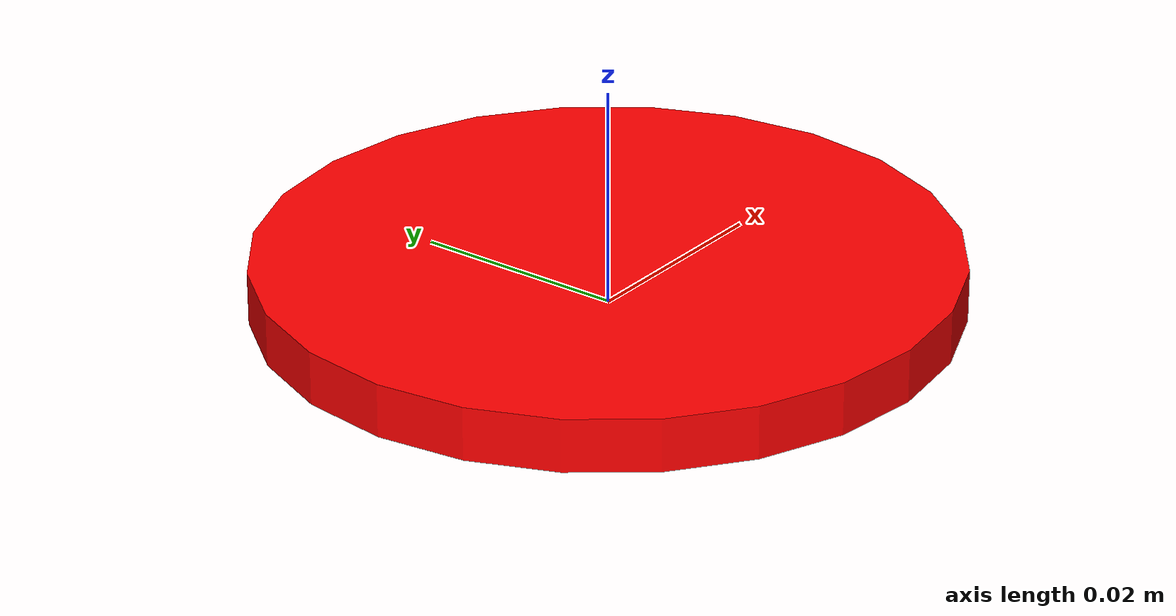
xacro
<?xml version="1.0" encoding="utf-8"?>
<robot name="puck" xmlns:xacro="http://www.ros.org/wiki/xacro">
    <material name="Red">
        <color rgba="1.0 0.0 0.0 1"/>
    </material>

    <material name="Green">
        <color rgba="0.0 1.0 0.0 1"/>
    </material>

    <material name="Blue">
        <color rgba="0.0 0.0 1.0 1"/>
    </material>

    <xacro:arg name="puck_name" default="Puck"/>
    <xacro:arg name="color" default="Red"/>
    <xacro:arg name="collide_bitmask" default="0x03"/>
    <xacro:arg name="restitution" default="1.0"/>
    <xacro:arg name="lateral_friction" default="1.0"/>
    <xacro:arg name="spinning_friction" default="0.002104678089464182"/>
    <xacro:arg name="linear_vel_decay" default="0.000075"/>
    <xacro:arg name="angular_vel_decay" default="0.0007291871439489361"/>

    <xacro:property name="puck_radius" value="0.03165"/>
    <xacro:property name="puck_height" value="0.0049"/>

    <xacro:macro name="puck" params="puck_name color collide_bitmask restitution
                                     lateral_friction spinning_friction linear_vel_decay angular_vel_decay">
        <link name="${puck_name}"/>

        <joint name="{puck_name}_joint_weight_1" type="fixed">
            <origin xyz="${puck_radius} 0 ${puck_height/2}" rpy="0 0 0"/>
            <parent link="${puck_name}"/>
            <child link="${puck_name}_link_weight_1"/>
        </joint>
        <link name="${puck_name}_link_weight_1">
            <inertial>
                <origin xyz="0 0 0.0" rpy="0 0 0"/>
                <mass value="0.002"/>
                <inertia ixx="0.00001" ixy="0" ixz="0" iyy="0.00001" iyz="0" izz="5e-6"/>
            </inertial>
        </link>

        <joint name="{puck_name}_joint_weight_2" type="fixed">
            <origin xyz="-${puck_radius} 0 ${puck_height/2}" rpy="0 0 0"/>
            <parent link="${puck_name}"/>
            <child link="${puck_name}_link_weight_2"/>
        </joint>
        <link name="${puck_name}_link_weight_2">
            <inertial>
                <origin xyz="0 0 0.0" rpy="0 0 0"/>
                <mass value="0.002"/>
                <inertia ixx="0.00001" ixy="0" ixz="0" iyy="0.00001" iyz="0" izz="5e-6"/>
            </inertial>
        </link>

        <joint name="{puck_name}_joint_weight_3" type="fixed">
            <origin xyz="0 ${puck_radius} ${puck_height/2}" rpy="0 0 0"/>
            <parent link="${puck_name}"/>
            <child link="${puck_name}_link_weight_3"/>
        </joint>
        <link name="${puck_name}_link_weight_3">
            <inertial>
                <origin xyz="0 0 0.0" rpy="0 0 0"/>
                <mass value="0.002"/>
                <inertia ixx="0.00001" ixy="0" ixz="0" iyy="0.00001" iyz="0" izz="5e-6"/>
            </inertial>
        </link>

        <joint name="{puck_name}_joint_weight_4" type="fixed">
            <origin xyz="0 -${puck_radius} ${puck_height/2}" rpy="0 0 0"/>
            <parent link="${puck_name}"/>
            <child link="${puck_name}_link_weight_4"/>
        </joint>
        <link name="${puck_name}_link_weight_4">
            <inertial>
                <origin xyz="0 0 0.0" rpy="0 0 0"/>
                <mass value="0.002"/>
                <inertia ixx="0.00001" ixy="0" ixz="0" iyy="0.00001" iyz="0" izz="5e-6"/>
            </inertial>
        </link>

        <joint name="{puck_name}_joint" type="fixed">
            <origin xyz="0 0 ${puck_height/2}" rpy="0 0 0"/>
            <parent link="${puck_name}"/>
            <child link="${puck_name}_link"/>
        </joint>

        <link name="${puck_name}_link">
            <inertial>
                <origin xyz="0 0 0.0" rpy="0 0 0"/>
                <mass value="0.002"/>
                <inertia ixx="0.001" ixy="0" ixz="0" iyy="0.001" iyz="0" izz="5e-6"/>
            </inertial>
            <visual>
                <origin xyz="0 0 0.0" rpy="0 0 0"/>
                <geometry>
                    <cylinder radius="${puck_radius}" length="${puck_height}"/>
                </geometry>
                <material name="${color}"/>
            </visual>
            <collision>
                <origin xyz="0 0 0.0" rpy="0 0 0"/>
                <geometry>
                    <cylinder radius="${puck_radius}" length="${puck_height}"/>
                </geometry>
            </collision>
            <contact>
                <restitution value="$(arg restitution)"/>
                <lateral_friction value="${lateral_friction}"/>
                <rolling_friction value="0.0"/>
                <spinning_friction value="${spinning_friction}"/>
            </contact>
        </link>

        <gazebo reference="${puck_name}">
            <velocity_decay>
                <linear>${linear_vel_decay}</linear>
                <angular>${angular_vel_decay}</angular>
            </velocity_decay>
            <collision>
                <surface>
                    <bounce>
                        <restitution_coefficient>${restitution}</restitution_coefficient>
                        <threshold>0.0</threshold>
                    </bounce>
                    <friction>
                        <!-- For Gazebo Must contain tag ode, mu, mu2, check https://github.com/osrf/sdformat/issues/31 -->
                        <!-- https://github.com/osrf/gazebo/blob/gazebo11/gazebo/physics/bullet/BulletSurfaceParams.cc -->
                        <torsional>
                            <coefficient>${spinning_friction}</coefficient>
                            <use_patch_radius>true</use_patch_radius>
                            <patch_radius>${puck_radius}</patch_radius>
                        </torsional>
                        <ode>
                            <mu>${lateral_friction}</mu>
                            <mu2>${lateral_friction}</mu2>
                        </ode>
                    </friction>
                    <contact>
                        <collide_bitmask>${collide_bitmask}</collide_bitmask>
                        <ode>
                            <kp>1e9</kp>
                            <max_vel>20</max_vel>
                        </ode>
                    </contact>
                </surface>
            </collision>
            <material>Gazebo/Red</material>
        </gazebo>

        <gazebo>
            <updateRate>500.0</updateRate>
            <plugin name="puck_tf_plugin" filename="libpuck_tf_plugin.so">
            </plugin>
        </gazebo>

    </xacro:macro>

    <xacro:puck puck_name="$(arg puck_name)"
                collide_bitmask="$(arg collide_bitmask)"
                color="$(arg color)"
                restitution="$(arg restitution)"
                lateral_friction="$(arg lateral_friction)"
                spinning_friction="$(arg spinning_friction)"
                linear_vel_decay="$(arg linear_vel_decay)"
                angular_vel_decay="$(arg angular_vel_decay)"/>
</robot>
